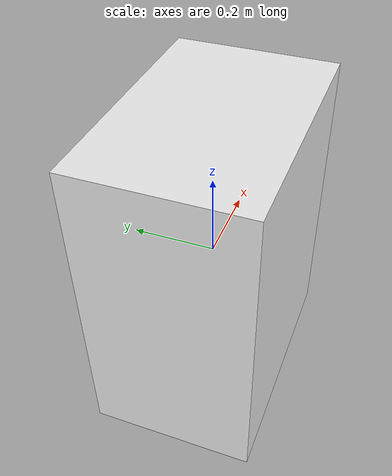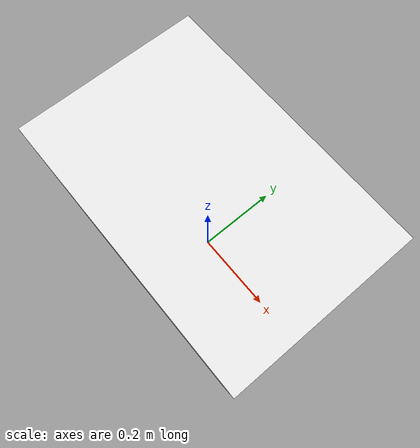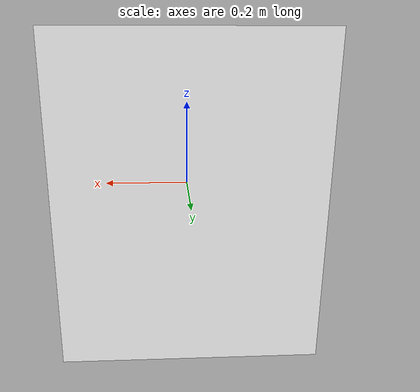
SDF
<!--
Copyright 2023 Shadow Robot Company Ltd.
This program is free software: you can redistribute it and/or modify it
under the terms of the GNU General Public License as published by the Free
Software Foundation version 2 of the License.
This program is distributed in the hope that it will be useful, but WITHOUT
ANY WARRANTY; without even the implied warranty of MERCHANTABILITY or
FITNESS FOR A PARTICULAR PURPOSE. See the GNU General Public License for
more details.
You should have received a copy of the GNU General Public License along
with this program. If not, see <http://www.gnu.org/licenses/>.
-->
<?xml version='1.0'?>

<sdf version="1.4">
<model name="stand">
    <static>true</static>
    <link name="link">
      <collision name="collision_stand">
        <geometry>
          <box>
            <size>0.59 0.39 0.74</size>
          </box>
        </geometry>
      </collision>
      <visual name="visual_base_stand">
        <geometry>
          <box>
            <size>0.59 0.39 0.74</size>
          </box>
        </geometry>
        <material>
          <script>
            <uri>file://media/materials/scripts/gazebo.material</uri>
            <name>Gazebo/White</name>
          </script>
        </material>
      </visual>
    </link>
  </model>
</sdf>
